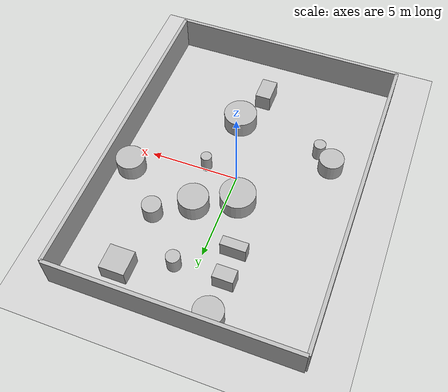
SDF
<?xml version="1.0"?>
<sdf version="1.6">
  <world name="env_2">

    <include><uri>model://ground_plane</uri></include>
    <include><uri>model://sun</uri></include>

    <!-- WALLS -->
    <model name="wall_north"><static>true</static><pose>0 8.924300039145699 1 0 0 0</pose>
      <link name="link"><collision name="collision">
        <geometry><box><size>13.297393924411882 0.2 2</size></box></geometry>
      </collision><visual name="visual">
        <geometry><box><size>13.297393924411882 0.2 2</size></box></geometry>
      </visual></link>
    </model>

    <model name="wall_south"><static>true</static><pose>0 -8.924300039145699 1 0 0 0</pose>
      <link name="link"><collision name="collision">
        <geometry><box><size>13.297393924411882 0.2 2</size></box></geometry>
      </collision><visual name="visual">
        <geometry><box><size>13.297393924411882 0.2 2</size></box></geometry>
      </visual></link>
    </model>

    <model name="wall_east"><static>true</static><pose>6.648696962205941 0 1 0 0 1.57</pose>
      <link name="link"><collision name="collision">
        <geometry><box><size>17.848600078291398 0.2 2</size></box></geometry>
      </collision><visual name="visual">
        <geometry><box><size>17.848600078291398 0.2 2</size></box></geometry>
      </visual></link>
    </model>

    <model name="wall_west"><static>true</static><pose>-6.648696962205941 0 1 0 0 1.57</pose>
      <link name="link"><collision name="collision">
        <geometry><box><size>17.848600078291398 0.2 2</size></box></geometry>
      </collision><visual name="visual">
        <geometry><box><size>17.848600078291398 0.2 2</size></box></geometry>
      </visual></link>
    </model>

    <!-- SENSOR -->

    <model name="lidar_sensor">
      <static>true</static>
      <pose>-3.527818335411128 -5.0878879220618956 0.4 0 0 0</pose>
      <link name="link">
        <sensor name="lidar" type="ray">
          <pose>0 0 0 0 0 0</pose>
          <visualize>true</visualize>
          <always_on>true</always_on>
          <update_rate>10</update_rate>
          <ray>
            <scan><horizontal>
              <samples>240</samples>
              <resolution>1</resolution>
              <min_angle>-3.14159</min_angle>
              <max_angle>3.14159</max_angle>
            </horizontal></scan>
            <range><min>0.15</min><max>20.0</max><resolution>0.01</resolution></range>
          </ray>
          <plugin name="lidar_plugin" filename="liblidar_plugin.so"/>
        </sensor>
      </link>
    </model>

    <!-- OBSTACLES -->

    <model name="obstacle_0">
      <static>true</static>
      <pose>-1.4912806534379373 4.360246819933588 0.5 0 0 0</pose>
      <link name="link">
        <collision name="collision">
          <geometry><box><size>1.39 0.53 1.0</size></box></geometry>
        </collision>
        <visual name="visual">
          <geometry><box><size>1.39 0.53 1.0</size></box></geometry>
        </visual>
      </link>
    </model>

    <model name="obstacle_1">
      <static>true</static>
      <pose>-1.5832381268604374 8.121417701656828 0.5 0 0 0</pose>
      <link name="link">
        <collision name="collision">
          <geometry><cylinder><radius>0.78</radius><length>1.0</length></cylinder></geometry>
        </collision>
        <visual name="visual">
          <geometry><cylinder><radius>0.78</radius><length>1.0</length></cylinder></geometry>
        </visual>
      </link>
    </model>

    <model name="obstacle_2">
      <static>true</static>
      <pose>-4.657840287048872 -2.4400578281723773 0.5 0 0 0</pose>
      <link name="link">
        <collision name="collision">
          <geometry><cylinder><radius>0.69</radius><length>1.0</length></cylinder></geometry>
        </collision>
        <visual name="visual">
          <geometry><cylinder><radius>0.69</radius><length>1.0</length></cylinder></geometry>
        </visual>
      </link>
    </model>

    <model name="obstacle_3">
      <static>true</static>
      <pose>1.1217242369159077 6.061161341754177 0.5 0 0 0</pose>
      <link name="link">
        <collision name="collision">
          <geometry><cylinder><radius>0.38</radius><length>1.0</length></cylinder></geometry>
        </collision>
        <visual name="visual">
          <geometry><cylinder><radius>0.38</radius><length>1.0</length></cylinder></geometry>
        </visual>
      </link>
    </model>

    <model name="obstacle_4">
      <static>true</static>
      <pose>-3.777486884389457 -3.1688852139060506 0.5 0 0 0</pose>
      <link name="link">
        <collision name="collision">
          <geometry><cylinder><radius>0.34</radius><length>1.0</length></cylinder></geometry>
        </collision>
        <visual name="visual">
          <geometry><cylinder><radius>0.34</radius><length>1.0</length></cylinder></geometry>
        </visual>
      </link>
    </model>

    <model name="obstacle_5">
      <static>true</static>
      <pose>1.8532252694997755 -0.22153091172741135 0.5 0 0 0</pose>
      <link name="link">
        <collision name="collision">
          <geometry><cylinder><radius>0.3</radius><length>1.0</length></cylinder></geometry>
        </collision>
        <visual name="visual">
          <geometry><cylinder><radius>0.3</radius><length>1.0</length></cylinder></geometry>
        </visual>
      </link>
    </model>

    <model name="obstacle_6">
      <static>true</static>
      <pose>0.33493209555498726 -6.037368919009548 0.5 0 0 0</pose>
      <link name="link">
        <collision name="collision">
          <geometry><box><size>0.89 1.38 1.0</size></box></geometry>
        </collision>
        <visual name="visual">
          <geometry><box><size>0.89 1.38 1.0</size></box></geometry>
        </visual>
      </link>
    </model>

    <model name="obstacle_7">
      <static>true</static>
      <pose>1.1447712586214527 -3.779326876919076 0.5 0 0 0</pose>
      <link name="link">
        <collision name="collision">
          <geometry><cylinder><radius>0.94</radius><length>1.0</length></cylinder></geometry>
        </collision>
        <visual name="visual">
          <geometry><cylinder><radius>0.94</radius><length>1.0</length></cylinder></geometry>
        </visual>
      </link>
    </model>

    <model name="obstacle_8">
      <static>true</static>
      <pose>5.730740877620532 1.285004928765595 0.5 0 0 0</pose>
      <link name="link">
        <collision name="collision">
          <geometry><cylinder><radius>0.8</radius><length>1.0</length></cylinder></geometry>
        </collision>
        <visual name="visual">
          <geometry><cylinder><radius>0.8</radius><length>1.0</length></cylinder></geometry>
        </visual>
      </link>
    </model>

    <model name="obstacle_9">
      <static>true</static>
      <pose>3.6290984956118653 7.174644882742394 0.5 0 0 0</pose>
      <link name="link">
        <collision name="collision">
          <geometry><box><size>1.37 1.36 1.0</size></box></geometry>
        </collision>
        <visual name="visual">
          <geometry><box><size>1.37 1.36 1.0</size></box></geometry>
        </visual>
      </link>
    </model>

    <model name="obstacle_10">
      <static>true</static>
      <pose>1.5313156939671764 2.4513044040597975 0.5 0 0 0</pose>
      <link name="link">
        <collision name="collision">
          <geometry><cylinder><radius>0.84</radius><length>1.0</length></cylinder></geometry>
        </collision>
        <visual name="visual">
          <geometry><cylinder><radius>0.84</radius><length>1.0</length></cylinder></geometry>
        </visual>
      </link>
    </model>

    <model name="obstacle_11">
      <static>true</static>
      <pose>-1.6262872955548042 6.049722475460628 0.5 0 0 0</pose>
      <link name="link">
        <collision name="collision">
          <geometry><box><size>1.11 0.74 1.0</size></box></geometry>
        </collision>
        <visual name="visual">
          <geometry><box><size>1.11 0.74 1.0</size></box></geometry>
        </visual>
      </link>
    </model>

    <model name="obstacle_12">
      <static>true</static>
      <pose>-0.604282634636399 1.4290882047513254 0.5 0 0 0</pose>
      <link name="link">
        <collision name="collision">
          <geometry><cylinder><radius>0.98</radius><length>1.0</length></cylinder></geometry>
        </collision>
        <visual name="visual">
          <geometry><cylinder><radius>0.98</radius><length>1.0</length></cylinder></geometry>
        </visual>
      </link>
    </model>

    <model name="obstacle_13">
      <static>true</static>
      <pose>3.382330832346261 3.6619151670032277 0.5 0 0 0</pose>
      <link name="link">
        <collision name="collision">
          <geometry><cylinder><radius>0.53</radius><length>1.0</length></cylinder></geometry>
        </collision>
        <visual name="visual">
          <geometry><cylinder><radius>0.53</radius><length>1.0</length></cylinder></geometry>
        </visual>
      </link>
    </model>

  </world>
</sdf>
